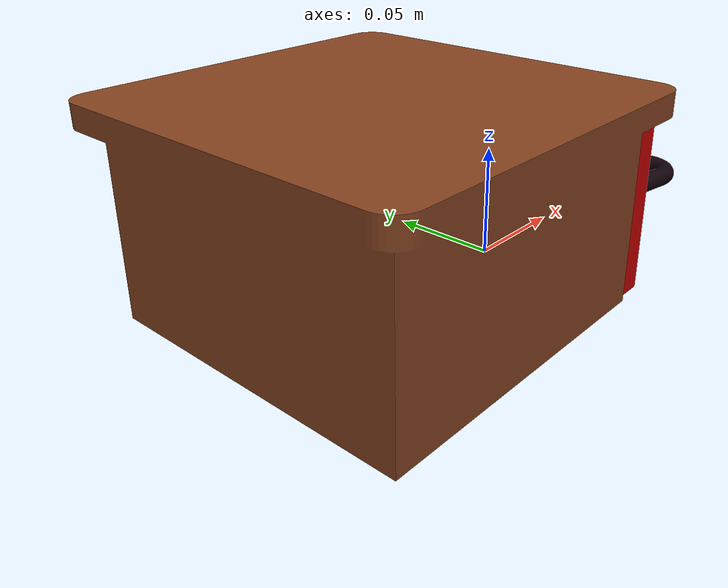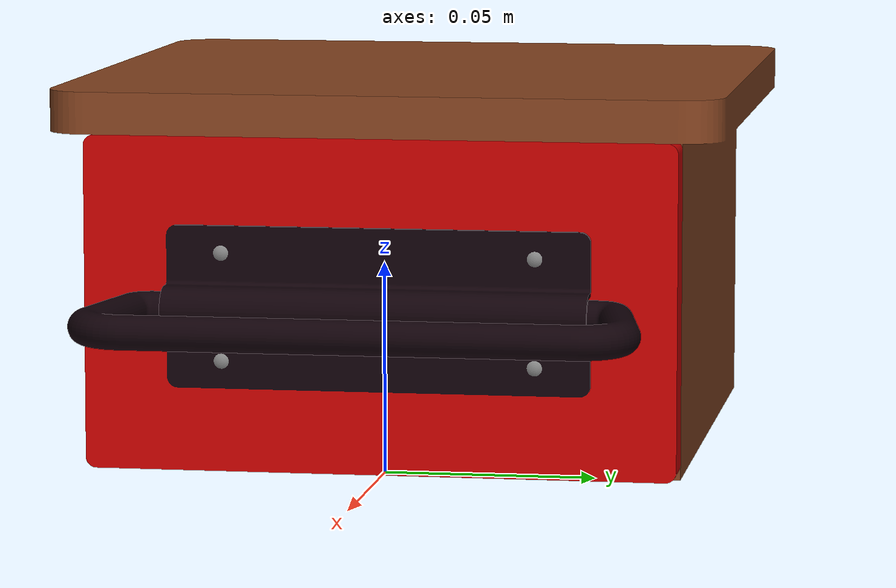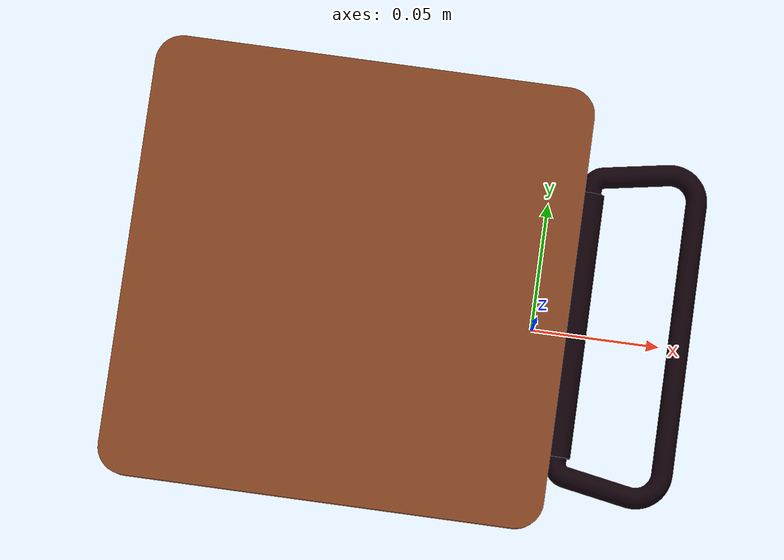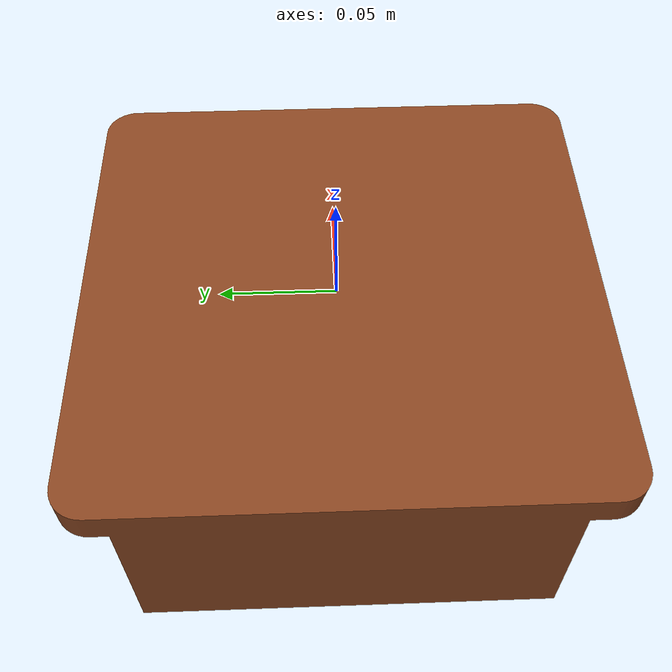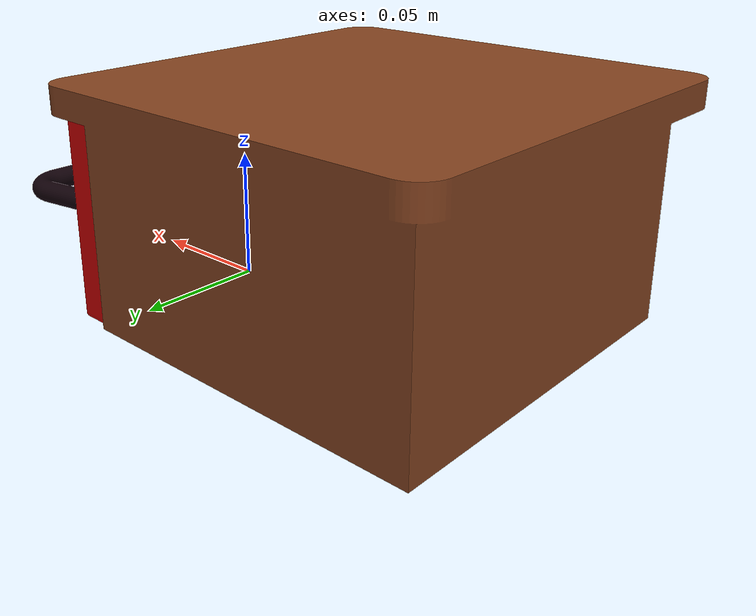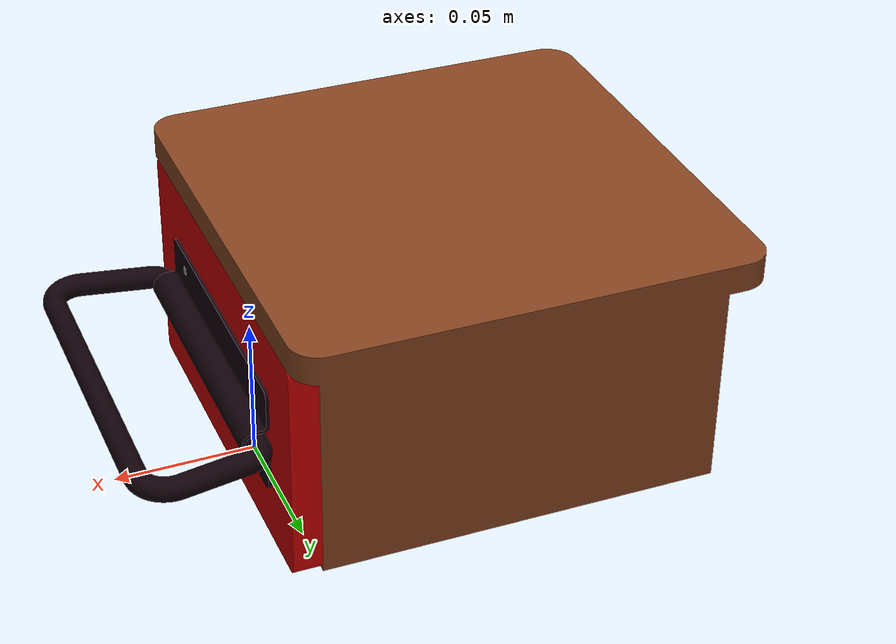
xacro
<?xml version="1.0"?>
<robot name="drawer" xmlns:xacro="http://ros.org/wiki/xacro">

  <xacro:include filename="$(find wx250s_description)/urdf/drawer_parts/box/base.xacro"/>
  <xacro:include filename="$(find wx250s_description)/urdf/drawer_parts/drawer/drawer.xacro"/>
  <xacro:include filename="$(find wx250s_description)/urdf/drawer_parts/handle/handle.xacro"/>

  <xacro:property name="PI" value="3.14159274"/>

  <link name="base_footprint"/>
  <xacro:base parent="base_footprint">
    <origin xyz="0 0 0" rpy="${PI/2} 0 0" />
  </xacro:base>

  <xacro:drawer parent="base_link">
    <origin xyz="0.01 0.0 0.0" rpy="0 0 0" />
    <axis xyz="1 0 0"/>
  </xacro:drawer>

  <xacro:handle parent="drawer_link">
    <origin xyz="0.00425 0.04 0.0" rpy="0 0 0" />
    <axis xyz="0 0 1"/>
  </xacro:handle>

</robot>

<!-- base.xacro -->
<robot xmlns:xacro="http://ros.org/wiki/xacro">

  <xacro:macro name="base" params="parent *joint_origin">
	  <joint name="base_link_joint" type="fixed">
	    <xacro:insert_block name="joint_origin"/>
	    <parent link="${parent}"/>
	    <child link="base_link"/>
	  </joint>

	<link name="base_link">
	  <visual>
		  <geometry>
		    <mesh filename="package://wx250s_description/drawer_meshes/DAE/box/box.dae"/>
		  </geometry>
	  </visual>
	  <collision>
		  <geometry>
		    <mesh filename="package://wx250s_description/drawer_meshes/STL/box/box.stl"/>
		  </geometry>
	  </collision>
	  <inertial>
		  <origin xyz="-0.075 0.053 0"/>
		  <mass value="0.89"/>
		<inertia ixx="0.0029" ixy="0.000061" ixz="0" iyy="0.0037" iyz="0" izz="0.00266" />
	  </inertial>
          <surface>
            <friction>
              <ode>
                <mu>0.8</mu>
                <mu2>0.8</mu2>
                <kp>1e15</kp>
                <kd>1e13</kd>
              </ode>
            </friction>
            <bounce>
              <restitution_coefficient>0.01</restitution_coefficient>
              <threshold>10</threshold>
            </bounce>
            <contact>
              <ode>
                <max_vel>0.01</max_vel>
                <minDepth>0</minDepth>
                <contact_surface_layer>0</contact_surface_layer>
              </ode>
            </contact>
          </surface>
	</link>
  </xacro:macro>

</robot>

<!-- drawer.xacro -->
<robot xmlns:xacro="http://ros.org/wiki/xacro">

  <xacro:macro name="drawer" params="parent *joint_origin *joint_axis">
	<joint name="drawer_joint" type="prismatic">
	  <xacro:insert_block name="joint_origin"/>
	  <parent link="${parent}"/>
	  <child link="drawer_link"/>
          <limit effort="100" velocity="100" lower="0" upper = "0.12"/>
          <dynamics damping="0.1" friction="0.1"/>
	  <xacro:insert_block name="joint_axis"/>
	</joint>

	<link name="drawer_link">
	  <visual>
		  <geometry>
		    <mesh filename="package://wx250s_description/drawer_meshes/DAE/drawer/drawer.dae"/>
		  </geometry>
	  </visual>
	  <collision>
		  <geometry>
		    <mesh filename="package://wx250s_description/drawer_meshes/STL/drawer/drawer.stl"/>
		  </geometry>
	  </collision>
	  <inertial>
		<origin xyz="-0.06286 0.0033 0.0"/>
		<mass value="0.4"/>
		<inertia ixx="0.000889" ixy="0.0000217" ixz="0" iyy="0.00176" iyz="0" izz="0.00120"/>
	  </inertial>
          <surface>
            <friction>
              <ode>
                <mu1>0.1</mu1>
                <mu2>0.1</mu2>
                <kp>1e15</kp>
                <kd>1e13</kd>
              </ode>
            </friction>
            <bounce>
              <restitution_coefficient>0.01</restitution_coefficient>
              <threshold>0</threshold>
            </bounce>
            <contact>
              <ode>
                <max_vel>10</max_vel>
              </ode>
            </contact>
          </surface>
	</link>
  </xacro:macro>

</robot>

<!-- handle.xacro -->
<robot xmlns:xacro="http://ros.org/wiki/xacro">

  <xacro:macro name="handle" params="parent *joint_origin *joint_axis">
	<joint name="handle_joint" type="revolute">
	  <xacro:insert_block name="joint_origin"/>
	  <parent link="${parent}"/>
	  <child link="handle_link"/>
          <limit effort="100" velocity="100" lower="-0.5" upper = "0.5"/>
          <dynamics damping="0.1" friction="0.1"/>
	  <xacro:insert_block name="joint_axis"/>
	</joint>

	<link name="handle_link">
	  <visual>
		  <geometry>
		    <mesh filename="package://wx250s_description/drawer_meshes/DAE/handle/handle.dae"/>
		  </geometry>
	  </visual>
	  <collision>
		  <geometry>
		    <mesh filename="package://wx250s_description/drawer_meshes/STL/handle/handle.stl"/>
		  </geometry>
	  </collision>
	  <inertial>
		<origin xyz="0.026 0.0 0.0"/>
		<mass value="0.012"/>
		<inertia ixx="0.0000246" ixy="-0.0000030658" ixz="0.0" iyy="0.000027754" iyz="0.0" izz="0.000003240"/>
	  </inertial>
          <surface>
            <friction>
              <ode>
                <mu1>1.2</mu1>
                <mu2>1.2</mu2>
                <kp>1e15</kp>
                <kd>1e13</kd>
              </ode>
            </friction>
            <bounce>
              <restitution_coefficient>0.01</restitution_coefficient>
              <threshold>0</threshold>
            </bounce>
            <contact>
              <ode>
                <max_vel>10</max_vel>
              </ode>
            </contact>
          </surface>
	</link>
  </xacro:macro>

</robot>
